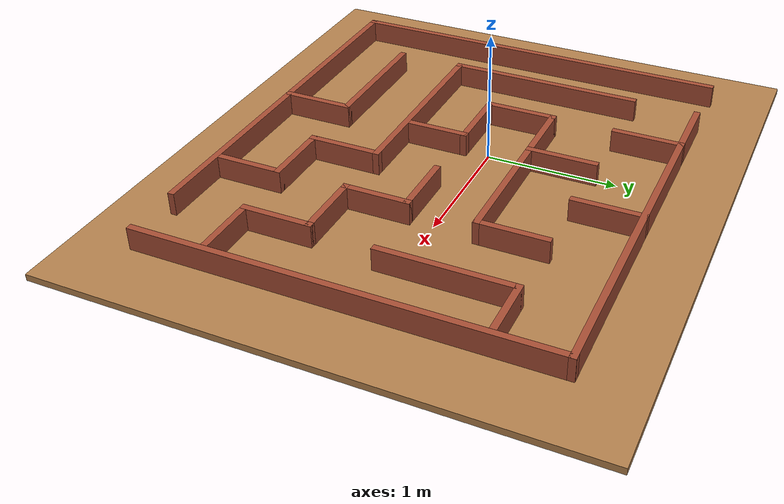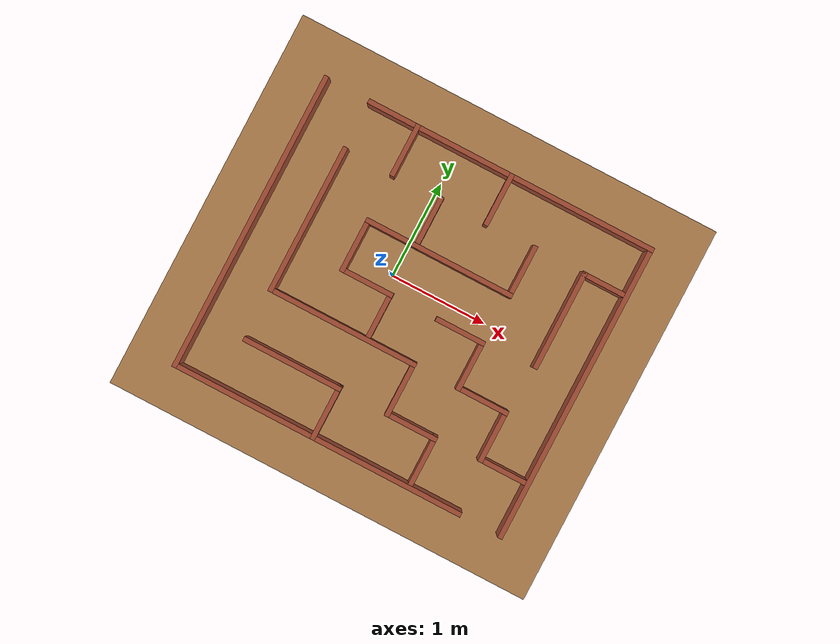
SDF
<?xml version='1.0'?>
<sdf version='1.6'>
  <model name='maze1'>
    <pose frame=''>0.314901 -0.175 0 0 -0 0</pose>
    <link name='ground_link'>
      <collision name='ground_collision'>
        <geometry>
          <box>
            <size>4.5 4 0.05</size>
          </box>
        </geometry>
        <surface>
          <friction>
            <ode>
              <mu>100</mu>
              <mu2>50</mu2>
            </ode>
          </friction>
        </surface>
      </collision>
      <visual name='ground_visual'>
        <geometry>
          <box>
            <size>4.5 4 0.05</size>
          </box>
        </geometry>
        <material>
          <script>
            <uri>file://media/materials/scripts/gazebo.material</uri>
            <name>Gazebo/Wood</name>
          </script>
        </material>
      </visual>
    </link>
    <link name='Wall_11'>
      <collision name='Wall_11_Collision'>
        <geometry>
          <box>
            <size>1.54 0.05 0.2</size>
          </box>
        </geometry>
        <pose frame=''>0 0 0.1 0 -0 0</pose>
      </collision>
      <visual name='Wall_11_Visual'>
        <pose frame=''>0 0 0.1 0 -0 0</pose>
        <geometry>
          <box>
            <size>1.54 0.05 0.2</size>
          </box>
        </geometry>
        <material>
          <script>
            <uri>file://media/materials/scripts/gazebo.material</uri>
            <name>Gazebo/Bricks</name>
          </script>
          <ambient>1 1 1 1</ambient>
        </material>
        <meta>
          <layer>0</layer>
        </meta>
      </visual>
      <pose frame=''>-1.2649 0.27 0 0 -0 -1.5708</pose>
    </link>
    <link name='Wall_13'>
      <collision name='Wall_13_Collision'>
        <geometry>
          <box>
            <size>1.57 0.05 0.2</size>
          </box>
        </geometry>
        <pose frame=''>0 0 0.1 0 -0 0</pose>
      </collision>
      <visual name='Wall_13_Visual'>
        <pose frame=''>0 0 0.1 0 -0 0</pose>
        <geometry>
          <box>
            <size>1.57 0.05 0.2</size>
          </box>
        </geometry>
        <material>
          <script>
            <uri>file://media/materials/scripts/gazebo.material</uri>
            <name>Gazebo/Bricks</name>
          </script>
          <ambient>1 1 1 1</ambient>
        </material>
        <meta>
          <layer>0</layer>
        </meta>
      </visual>
      <pose frame=''>-0.504901 -0.475 0 0 -0 0</pose>
    </link>
    <link name='Wall_15'>
      <collision name='Wall_15_Collision'>
        <geometry>
          <box>
            <size>1.04 0.05 0.2</size>
          </box>
        </geometry>
        <pose frame=''>0 0 0.1 0 -0 0</pose>
      </collision>
      <visual name='Wall_15_Visual'>
        <pose frame=''>0 0 0.1 0 -0 0</pose>
        <geometry>
          <box>
            <size>1.04 0.05 0.2</size>
          </box>
        </geometry>
        <material>
          <script>
            <uri>file://media/materials/scripts/gazebo.material</uri>
            <name>Gazebo/Bricks</name>
          </script>
          <ambient>1 1 1 1</ambient>
        </material>
        <meta>
          <layer>0</layer>
        </meta>
      </visual>
      <pose frame=''>-0.759901 -1.005 0 0 -0 0</pose>
    </link>
    <link name='Wall_17'>
      <collision name='Wall_17_Collision'>
        <geometry>
          <box>
            <size>0.57 0.05 0.2</size>
          </box>
        </geometry>
        <pose frame=''>0 0 0.1 0 -0 0</pose>
      </collision>
      <visual name='Wall_17_Visual'>
        <pose frame=''>0 0 0.1 0 -0 0</pose>
        <geometry>
          <box>
            <size>0.57 0.05 0.2</size>
          </box>
        </geometry>
        <material>
          <script>
            <uri>file://media/materials/scripts/gazebo.material</uri>
            <name>Gazebo/Bricks</name>
          </script>
          <ambient>1 1 1 1</ambient>
        </material>
        <meta>
          <layer>0</layer>
        </meta>
      </visual>
      <pose frame=''>-0.264901 -1.265 0 0 -0 -1.5708</pose>
    </link>
    <link name='Wall_19'>
      <collision name='Wall_19_Collision'>
        <geometry>
          <box>
            <size>1.56 0.05 0.2</size>
          </box>
        </geometry>
        <pose frame=''>0 0 0.1 0 -0 0</pose>
      </collision>
      <visual name='Wall_19_Visual'>
        <pose frame=''>0 0 0.1 0 -0 0</pose>
        <geometry>
          <box>
            <size>1.56 0.05 0.2</size>
          </box>
        </geometry>
        <material>
          <script>
            <uri>file://media/materials/scripts/gazebo.material</uri>
            <name>Gazebo/Bricks</name>
          </script>
          <ambient>1 1 1 1</ambient>
        </material>
        <meta>
          <layer>0</layer>
        </meta>
      </visual>
      <pose frame=''>9.9e-05 0.525 0 0 -0 0</pose>
    </link>
    <link name='Wall_2'>
      <collision name='Wall_2_Collision'>
        <geometry>
          <box>
            <size>3.1 0.05 0.2</size>
          </box>
        </geometry>
        <pose frame=''>0 0 0.1 0 -0 0</pose>
      </collision>
      <visual name='Wall_2_Visual'>
        <pose frame=''>0 0 0.1 0 -0 0</pose>
        <geometry>
          <box>
            <size>3.1 0.05 0.2</size>
          </box>
        </geometry>
        <material>
          <script>
            <uri>file://media/materials/scripts/gazebo.material</uri>
            <name>Gazebo/Bricks</name>
          </script>
          <ambient>1 1 1 1</ambient>
        </material>
        <meta>
          <layer>0</layer>
        </meta>
      </visual>
      <pose frame=''>-1.7349 -0 0 0 -0 -1.5708</pose>
    </link>
    <link name='Wall_23'>
      <collision name='Wall_23_Collision'>
        <geometry>
          <box>
            <size>0.57 0.05 0.2</size>
          </box>
        </geometry>
        <pose frame=''>0 0 0.1 0 -0 0</pose>
      </collision>
      <visual name='Wall_23_Visual'>
        <pose frame=''>0 0 0.1 0 -0 0</pose>
        <geometry>
          <box>
            <size>0.57 0.05 0.2</size>
          </box>
        </geometry>
        <material>
          <script>
            <uri>file://media/materials/scripts/gazebo.material</uri>
            <name>Gazebo/Bricks</name>
          </script>
          <ambient>1 1 1 1</ambient>
        </material>
        <meta>
          <layer>0</layer>
        </meta>
      </visual>
      <pose frame=''>-0.754901 0.265 0 0 -0 1.5708</pose>
    </link>
    <link name='Wall_25'>
      <collision name='Wall_25_Collision'>
        <geometry>
          <box>
            <size>0.560392 0.05 0.2</size>
          </box>
        </geometry>
        <pose frame=''>0 0 0.1 0 -0 0</pose>
      </collision>
      <visual name='Wall_25_Visual'>
        <pose frame=''>0 0 0.1 0 -0 0</pose>
        <geometry>
          <box>
            <size>0.560392 0.05 0.2</size>
          </box>
        </geometry>
        <material>
          <script>
            <uri>file://media/materials/scripts/gazebo.material</uri>
            <name>Gazebo/Bricks</name>
          </script>
          <ambient>1 1 1 1</ambient>
        </material>
        <meta>
          <layer>0</layer>
        </meta>
      </visual>
      <pose frame=''>-0.499901 0.005 0 0 -0 3.14159</pose>
    </link>
    <link name='Wall_27'>
      <collision name='Wall_27_Collision'>
        <geometry>
          <box>
            <size>0.48 0.05 0.2</size>
          </box>
        </geometry>
        <pose frame=''>0 0 0.1 0 -0 0</pose>
      </collision>
      <visual name='Wall_27_Visual'>
        <pose frame=''>0 0 0.1 0 -0 0</pose>
        <geometry>
          <box>
            <size>0.48 0.05 0.2</size>
          </box>
        </geometry>
        <material>
          <script>
            <uri>file://media/materials/scripts/gazebo.material</uri>
            <name>Gazebo/Bricks</name>
          </script>
          <ambient>1 1 1 1</ambient>
        </material>
        <meta>
          <layer>0</layer>
        </meta>
      </visual>
      <pose frame=''>-0.244901 -0.21 0 0 -0 -1.5708</pose>
    </link>
    <link name='Wall_29'>
      <collision name='Wall_29_Collision'>
        <geometry>
          <box>
            <size>0.55 0.05 0.2</size>
          </box>
        </geometry>
        <pose frame=''>0 0 0.1 0 -0 0</pose>
      </collision>
      <visual name='Wall_29_Visual'>
        <pose frame=''>0 0 0.1 0 -0 0</pose>
        <geometry>
          <box>
            <size>0.55 0.05 0.2</size>
          </box>
        </geometry>
        <material>
          <script>
            <uri>file://media/materials/scripts/gazebo.material</uri>
            <name>Gazebo/Bricks</name>
          </script>
          <ambient>1 1 1 1</ambient>
        </material>
        <meta>
          <layer>0</layer>
        </meta>
      </visual>
      <pose frame=''>-0.754901 1.275 0 0 -0 1.5708</pose>
    </link>
    <link name='Wall_31'>
      <collision name='Wall_31_Collision'>
        <geometry>
          <box>
            <size>0.55 0.05 0.2</size>
          </box>
        </geometry>
        <pose frame=''>0 0 0.1 0 -0 0</pose>
      </collision>
      <visual name='Wall_31_Visual'>
        <pose frame=''>0 0 0.1 0 -0 0</pose>
        <geometry>
          <box>
            <size>0.55 0.05 0.2</size>
          </box>
        </geometry>
        <material>
          <script>
            <uri>file://media/materials/scripts/gazebo.material</uri>
            <name>Gazebo/Bricks</name>
          </script>
          <ambient>1 1 1 1</ambient>
        </material>
        <meta>
          <layer>0</layer>
        </meta>
      </visual>
      <pose frame=''>0.245099 1.275 0 0 -0 1.5708</pose>
    </link>
    <link name='Wall_33'>
      <collision name='Wall_33_Collision'>
        <geometry>
          <box>
            <size>0.55 0.05 0.2</size>
          </box>
        </geometry>
        <pose frame=''>0 0 0.1 0 -0 0</pose>
      </collision>
      <visual name='Wall_33_Visual'>
        <pose frame=''>0 0 0.1 0 -0 0</pose>
        <geometry>
          <box>
            <size>0.55 0.05 0.2</size>
          </box>
        </geometry>
        <material>
          <script>
            <uri>file://media/materials/scripts/gazebo.material</uri>
            <name>Gazebo/Bricks</name>
          </script>
          <ambient>1 1 1 1</ambient>
        </material>
        <meta>
          <layer>0</layer>
        </meta>
      </visual>
      <pose frame=''>-0.244901 0.775 0 0 -0 -1.5708</pose>
    </link>
    <link name='Wall_35'>
      <collision name='Wall_35_Collision'>
        <geometry>
          <box>
            <size>0.55 0.05 0.2</size>
          </box>
        </geometry>
        <pose frame=''>0 0 0.1 0 -0 0</pose>
      </collision>
      <visual name='Wall_35_Visual'>
        <pose frame=''>0 0 0.1 0 -0 0</pose>
        <geometry>
          <box>
            <size>0.55 0.05 0.2</size>
          </box>
        </geometry>
        <material>
          <script>
            <uri>file://media/materials/scripts/gazebo.material</uri>
            <name>Gazebo/Bricks</name>
          </script>
          <ambient>1 1 1 1</ambient>
        </material>
        <meta>
          <layer>0</layer>
        </meta>
      </visual>
      <pose frame=''>0.755099 0.775 0 0 -0 -1.5708</pose>
    </link>
    <link name='Wall_37'>
      <collision name='Wall_37_Collision'>
        <geometry>
          <box>
            <size>0.45 0.05 0.2</size>
          </box>
        </geometry>
        <pose frame=''>0 0 0.1 0 -0 0</pose>
      </collision>
      <visual name='Wall_37_Visual'>
        <pose frame=''>0 0 0.1 0 -0 0</pose>
        <geometry>
          <box>
            <size>0.45 0.05 0.2</size>
          </box>
        </geometry>
        <material>
          <script>
            <uri>file://media/materials/scripts/gazebo.material</uri>
            <name>Gazebo/Bricks</name>
          </script>
          <ambient>1 1 1 1</ambient>
        </material>
        <meta>
          <layer>0</layer>
        </meta>
      </visual>
      <pose frame=''>1.4851 1.025 0 0 -0 0</pose>
    </link>
    <link name='Wall_39'>
      <collision name='Wall_39_Collision'>
        <geometry>
          <box>
            <size>1.03 0.05 0.2</size>
          </box>
        </geometry>
        <pose frame=''>0 0 0.1 0 -0 0</pose>
      </collision>
      <visual name='Wall_39_Visual'>
        <pose frame=''>0 0 0.1 0 -0 0</pose>
        <geometry>
          <box>
            <size>1.03 0.05 0.2</size>
          </box>
        </geometry>
        <material>
          <script>
            <uri>file://media/materials/scripts/gazebo.material</uri>
            <name>Gazebo/Bricks</name>
          </script>
          <ambient>1 1 1 1</ambient>
        </material>
        <meta>
          <layer>0</layer>
        </meta>
      </visual>
      <pose frame=''>1.2851 0.535 0 0 -0 1.5708</pose>
    </link>
    <link name='Wall_4'>
      <collision name='Wall_4_Collision'>
        <geometry>
          <box>
            <size>3.07041 0.05 0.2</size>
          </box>
        </geometry>
        <pose frame=''>0 0 0.1 0 -0 0</pose>
      </collision>
      <visual name='Wall_4_Visual'>
        <pose frame=''>0 0 0.1 0 -0 0</pose>
        <geometry>
          <box>
            <size>3.07041 0.05 0.2</size>
          </box>
        </geometry>
        <material>
          <script>
            <uri>file://media/materials/scripts/gazebo.material</uri>
            <name>Gazebo/Bricks</name>
          </script>
          <ambient>1 1 1 1</ambient>
        </material>
        <meta>
          <layer>0</layer>
        </meta>
      </visual>
      <pose frame=''>-0.224901 -1.525 0 0 -0 0</pose>
    </link>
    <link name='Wall_41'>
      <collision name='Wall_41_Collision'>
        <geometry>
          <box>
            <size>0.52 0.05 0.2</size>
          </box>
        </geometry>
        <pose frame=''>0 0 0.1 0 -0 0</pose>
      </collision>
      <visual name='Wall_41_Visual'>
        <pose frame=''>0 0 0.1 0 -0 0</pose>
        <geometry>
          <box>
            <size>0.52 0.05 0.2</size>
          </box>
        </geometry>
        <material>
          <script>
            <uri>file://media/materials/scripts/gazebo.material</uri>
            <name>Gazebo/Bricks</name>
          </script>
          <ambient>1 1 1 1</ambient>
        </material>
        <meta>
          <layer>0</layer>
        </meta>
      </visual>
      <pose frame=''>0.500099 0.005 0 0 -0 0</pose>
    </link>
    <link name='Wall_43'>
      <collision name='Wall_43_Collision'>
        <geometry>
          <box>
            <size>0.580377 0.05 0.2</size>
          </box>
        </geometry>
        <pose frame=''>0 0 0.1 0 -0 0</pose>
      </collision>
      <visual name='Wall_43_Visual'>
        <pose frame=''>0 0 0.1 0 -0 0</pose>
        <geometry>
          <box>
            <size>0.580377 0.05 0.2</size>
          </box>
        </geometry>
        <material>
          <script>
            <uri>file://media/materials/scripts/gazebo.material</uri>
            <name>Gazebo/Bricks</name>
          </script>
          <ambient>1 1 1 1</ambient>
        </material>
        <meta>
          <layer>0</layer>
        </meta>
      </visual>
      <pose frame=''>0.255099 -0.74 0 0 -0 1.5708</pose>
    </link>
    <link name='Wall_45'>
      <collision name='Wall_45_Collision'>
        <geometry>
          <box>
            <size>0.55 0.05 0.2</size>
          </box>
        </geometry>
        <pose frame=''>0 0 0.1 0 -0 0</pose>
      </collision>
      <visual name='Wall_45_Visual'>
        <pose frame=''>0 0 0.1 0 -0 0</pose>
        <geometry>
          <box>
            <size>0.55 0.05 0.2</size>
          </box>
        </geometry>
        <material>
          <script>
            <uri>file://media/materials/scripts/gazebo.material</uri>
            <name>Gazebo/Bricks</name>
          </script>
          <ambient>1 1 1 1</ambient>
        </material>
        <meta>
          <layer>0</layer>
        </meta>
      </visual>
      <pose frame=''>0.505099 -1.005 0 0 -0 0</pose>
    </link>
    <link name='Wall_47'>
      <collision name='Wall_47_Collision'>
        <geometry>
          <box>
            <size>0.57 0.05 0.2</size>
          </box>
        </geometry>
        <pose frame=''>0 0 0.1 0 -0 0</pose>
      </collision>
      <visual name='Wall_47_Visual'>
        <pose frame=''>0 0 0.1 0 -0 0</pose>
        <geometry>
          <box>
            <size>0.57 0.05 0.2</size>
          </box>
        </geometry>
        <material>
          <script>
            <uri>file://media/materials/scripts/gazebo.material</uri>
            <name>Gazebo/Bricks</name>
          </script>
          <ambient>1 1 1 1</ambient>
        </material>
        <meta>
          <layer>0</layer>
        </meta>
      </visual>
      <pose frame=''>0.755099 -1.265 0 0 -0 -1.5708</pose>
    </link>
    <link name='Wall_49'>
      <collision name='Wall_49_Collision'>
        <geometry>
          <box>
            <size>0.53 0.05 0.2</size>
          </box>
        </geometry>
        <pose frame=''>0 0 0.1 0 -0 0</pose>
      </collision>
      <visual name='Wall_49_Visual'>
        <pose frame=''>0 0 0.1 0 -0 0</pose>
        <geometry>
          <box>
            <size>0.53 0.05 0.2</size>
          </box>
        </geometry>
        <material>
          <script>
            <uri>file://media/materials/scripts/gazebo.material</uri>
            <name>Gazebo/Bricks</name>
          </script>
          <ambient>1 1 1 1</ambient>
        </material>
        <meta>
          <layer>0</layer>
        </meta>
      </visual>
      <pose frame=''>0.735099 -0.235 0 0 -0 -1.5708</pose>
    </link>
    <link name='Wall_50'>
      <collision name='Wall_50_Collision'>
        <geometry>
          <box>
            <size>0.55 0.05 0.2</size>
          </box>
        </geometry>
        <pose frame=''>0 0 0.1 0 -0 0</pose>
      </collision>
      <visual name='Wall_50_Visual'>
        <pose frame=''>0 0 0.1 0 -0 0</pose>
        <geometry>
          <box>
            <size>0.55 0.05 0.2</size>
          </box>
        </geometry>
        <material>
          <script>
            <uri>file://media/materials/scripts/gazebo.material</uri>
            <name>Gazebo/Bricks</name>
          </script>
          <ambient>1 1 1 1</ambient>
        </material>
        <meta>
          <layer>0</layer>
        </meta>
      </visual>
      <pose frame=''>0.985099 -0.475 0 0 -0 0</pose>
    </link>
    <link name='Wall_51'>
      <collision name='Wall_51_Collision'>
        <geometry>
          <box>
            <size>0.55 0.05 0.2</size>
          </box>
        </geometry>
        <pose frame=''>0 0 0.1 0 -0 0</pose>
      </collision>
      <visual name='Wall_51_Visual'>
        <pose frame=''>0 0 0.1 0 -0 0</pose>
        <geometry>
          <box>
            <size>0.55 0.05 0.2</size>
          </box>
        </geometry>
        <material>
          <script>
            <uri>file://media/materials/scripts/gazebo.material</uri>
            <name>Gazebo/Bricks</name>
          </script>
          <ambient>1 1 1 1</ambient>
        </material>
        <meta>
          <layer>0</layer>
        </meta>
      </visual>
      <pose frame=''>1.2351 -0.725 0 0 -0 -1.5708</pose>
    </link>
    <link name='Wall_52'>
      <collision name='Wall_52_Collision'>
        <geometry>
          <box>
            <size>0.5 0.05 0.2</size>
          </box>
        </geometry>
        <pose frame=''>0 0 0.1 0 -0 0</pose>
      </collision>
      <visual name='Wall_52_Visual'>
        <pose frame=''>0 0 0.1 0 -0 0</pose>
        <geometry>
          <box>
            <size>0.5 0.05 0.2</size>
          </box>
        </geometry>
        <material>
          <script>
            <uri>file://media/materials/scripts/gazebo.material</uri>
            <name>Gazebo/Bricks</name>
          </script>
          <ambient>1 1 1 1</ambient>
        </material>
        <meta>
          <layer>0</layer>
        </meta>
      </visual>
      <pose frame=''>1.4601 -0.975 0 0 -0 0</pose>
    </link>
    <link name='Wall_6'>
      <collision name='Wall_6_Collision'>
        <geometry>
          <box>
            <size>3.04002 0.05 0.2</size>
          </box>
        </geometry>
        <pose frame=''>0 0 0.1 0 -0 0</pose>
      </collision>
      <visual name='Wall_6_Visual'>
        <pose frame=''>0 0 0.1 0 -0 0</pose>
        <geometry>
          <box>
            <size>3.04002 0.05 0.2</size>
          </box>
        </geometry>
        <material>
          <script>
            <uri>file://media/materials/scripts/gazebo.material</uri>
            <name>Gazebo/Bricks</name>
          </script>
          <ambient>1 1 1 1</ambient>
        </material>
        <meta>
          <layer>0</layer>
        </meta>
      </visual>
      <pose frame=''>0.240099 1.525 0 0 -0 0</pose>
    </link>
    <link name='Wall_8'>
      <collision name='Wall_8_Collision'>
        <geometry>
          <box>
            <size>3.1 0.05 0.2</size>
          </box>
        </geometry>
        <pose frame=''>0 0 0.1 0 -0 0</pose>
      </collision>
      <visual name='Wall_8_Visual'>
        <pose frame=''>0 0 0.1 0 -0 0</pose>
        <geometry>
          <box>
            <size>3.1 0.05 0.2</size>
          </box>
        </geometry>
        <material>
          <script>
            <uri>file://media/materials/scripts/gazebo.material</uri>
            <name>Gazebo/Bricks</name>
          </script>
          <ambient>1 1 1 1</ambient>
        </material>
        <meta>
          <layer>0</layer>
        </meta>
      </visual>
      <pose frame=''>1.7351 -0 0 0 -0 -1.5708</pose>
    </link>
    <static>1</static>
  </model>
</sdf>
